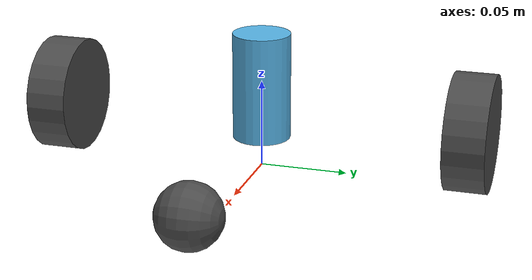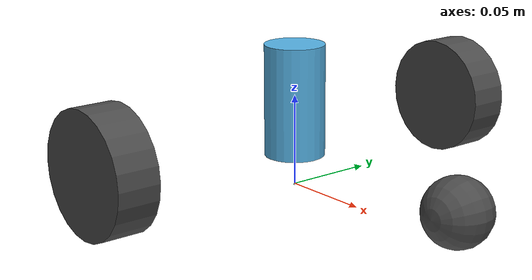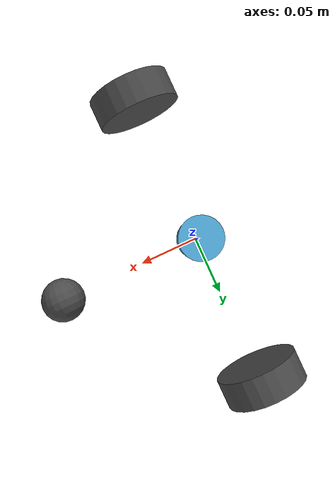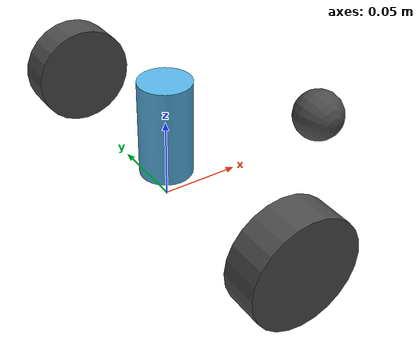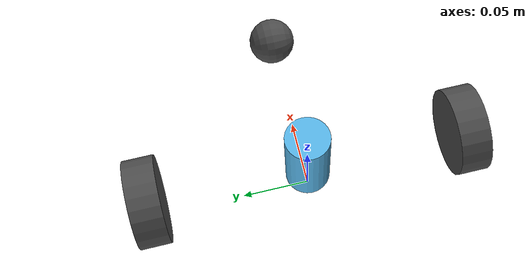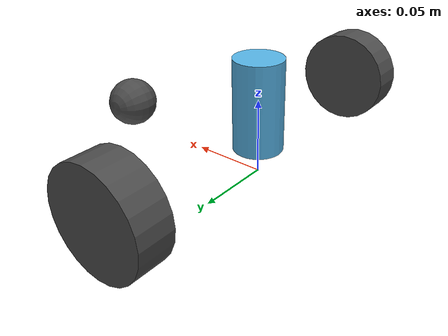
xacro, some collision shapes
<?xml version="1.0"?>
<robot name="roomba" xmlns:xacro="http://ros.org/wiki/xacro">

	<material name="Green">
		<color rgba="0.0 0.8 0.0 1.0"/>
	</material>

	<!-- base_footprint is a fictitious link(frame) that is on the ground right below base_link origin, navigation stack depends on this frame -->
	<link name="base_footprint">
		<visual>
	  		<origin xyz="0 0 0" rpy="0 0 0" />
	      		<geometry>
	        		<box size="0.001 0.001 0.001" />
	      		</geometry>
			<material name="Green" />
	 	</visual>

	 	<collision>
	      		<origin xyz="0 0 0.017" rpy="0 0 0" />
	      		<geometry>
	       			<box size="0.001 0.001 0.001" />
	      		</geometry>
	    	</collision>
	</link>

	<!-- base link, basically the body of the Roomba -->
	<link name="base_link">
		<inertial>
	     		<mass value="2" />
	      		<origin xyz="0 0 0.0" />
	      		<inertia ixx="0.01" ixy="0.0" ixz="0.0" iyy="0.01" iyz="0.0" izz="0.5" />
	 	</inertial>

	    	<visual>
	      		<origin xyz=" 0 0 0.0308" rpy="0 0 1.5708" />
	      		<geometry>
	        		<mesh filename="package://roomba_description/meshes/white_roomba.dae"/>
	      		</geometry>
	    	</visual>

	    	<collision>
	      		<origin xyz="0.0 0.0 0.0308" rpy="0 0 0" />
	      		<geometry>
	        		<cylinder length="0.0611632" radius="0.016495"/>
	     	 	</geometry>
	    	</collision>
	</link>

	<joint name="base_footprint_joint" type="fixed">
		<origin xyz="0 0 0.017" rpy="0 0 0" />
		<parent link="base_footprint"/>
	 	<child link="base_link" />
	</joint>

	<!-- cliff sensors -->
	<link name="left_cliff_sensor_link">
		<inertial>
			<mass value="0.01" />
	  		<origin xyz="0 0 0"/>
	     		<inertia ixx="0.001" ixy="0.0" ixz="0.0" iyy="0.001" iyz="0.0" izz="0.001" />
	   	</inertial>
	</link>

	<link name="right_cliff_sensor_link">
	 	<inertial>
	     		<mass value="0.01" />
	    		<origin xyz="0 0 0"/>
	    		<inertia ixx="0.001" ixy="0.0" ixz="0.0" iyy="0.001" iyz="0.0" izz="0.001" />
	    	</inertial>
	</link>

	<link name="front_left_cliff_sensor_link">
	 	<inertial>
	     		<mass value="0.01" />
	      		<origin xyz="0 0 0"/>
	      		<inertia ixx="1.0" ixy="0.0" ixz="0.0" iyy="0.01" iyz="0.0" izz="0.01" />
	    	</inertial>
	</link>

	 <link name="front_right_cliff_sensor_link">
		<inertial>
	     		<mass value="0.01" />
	      		<origin xyz="0 0 0"/>
	      		<inertia ixx="0.001" ixy="0.0" ixz="0.0" iyy="0.001" iyz="0.0" izz="0.001" />
	    	</inertial>
	</link>

	<joint name="left_sensor_joint" type="fixed">
	  	<origin xyz="0.07 0.14 0.01" rpy="0 1.57079 0" />
	    	<parent link="base_link"/>
	    	<child link="left_cliff_sensor_link" />
	</joint>

	<joint name="right_cliff_sensor_joint" type="fixed">
		<origin xyz="0.07 -0.14 0.01" rpy="0 1.57079 0" />
		<parent link="base_link"/>
	 	<child link="right_cliff_sensor_link" />
	</joint>

	<joint name="front_left_cliff_sensor_joint" type="fixed">
	    	<origin xyz="0.15 0.04 0.01" rpy="0 1.57079 0" />
	    	<parent link="base_link"/>
	    	<child link="front_left_cliff_sensor_link" />
	</joint>

	<joint name="front_right_cliff_sensor_joint" type="fixed">
	    	<origin xyz="0.15 -0.04 0.01" rpy="0 1.57079 0" />
	    	<parent link="base_link"/>
	    	<child link="front_right_cliff_sensor_link" />
	</joint>

	<!-- ir sensors -->
	<link name="left_ir_sensor_link">
		<inertial>
	   	<mass value="0.01" />
	      	<origin xyz="0 0 0"/>
	      		<inertia ixx="0.001" ixy="0.0" ixz="0.0" iyy="0.001" iyz="0.0" izz="0.001" />
	    	</inertial>
	</link>

	<link name="front_left_ir_sensor_link">
		<inertial>
	   	<mass value="0.01" />
	      	<origin xyz="0 0 0"/>
	      		<inertia ixx="0.001" ixy="0.0" ixz="0.0" iyy="0.001" iyz="0.0" izz="0.001" />
	    	</inertial>
	</link>

	<link name="center_left_ir_sensor_link">
		<inertial>
	   	<mass value="0.01" />
	      	<origin xyz="0 0 0"/>
	      		<inertia ixx="0.001" ixy="0.0" ixz="0.0" iyy="0.001" iyz="0.0" izz="0.001" />
	    	</inertial>
	</link>

	<link name="center_right_ir_sensor_link">
		<inertial>
	   	<mass value="0.01" />
	      	<origin xyz="0 0 0"/>
	      		<inertia ixx="0.001" ixy="0.0" ixz="0.0" iyy="0.001" iyz="0.0" izz="0.001" />
	    	</inertial>
	</link>

	<link name="front_right_ir_sensor_link">
		<inertial>
	   	<mass value="0.01" />
	      	<origin xyz="0 0 0"/>
	      		<inertia ixx="0.001" ixy="0.0" ixz="0.0" iyy="0.001" iyz="0.0" izz="0.001" />
	    	</inertial>
	</link>

	<link name="right_ir_sensor_link">
		<inertial>
	   	<mass value="0.01" />
	      	<origin xyz="0 0 0"/>
	      		<inertia ixx="0.001" ixy="0.0" ixz="0.0" iyy="0.001" iyz="0.0" izz="0.001" />
	    	</inertial>
	</link>

	<joint name="left_ir_sensor_joint" type="fixed">
	  	<origin xyz="0.01 0.15 0.042" rpy="0 0 1.5" />
	    	<parent link="base_link"/>
	    	<child link="left_ir_sensor_link" />
	</joint>

	<joint name="front_left_ir_sensor_joint" type="fixed">
	  	<origin xyz="0.09 0.12 0.042" rpy="0 0 1.0" />
	    	<parent link="base_link"/>
	    	<child link="front_left_ir_sensor_link" />
	</joint>

	<joint name="center_left_ir_sensor_joint" type="fixed">
	  	<origin xyz="0.15 0.04 0.042" rpy="0 0 0.4" />
	    	<parent link="base_link"/>
	    	<child link="center_left_ir_sensor_link" />
	</joint>

	<joint name="center_right_ir_sensor_joint" type="fixed">
	  	<origin xyz="0.15 -0.04 0.042" rpy="0 0 -0.4" />
	    	<parent link="base_link"/>
	    	<child link="center_right_ir_sensor_link" />
	</joint>

	<joint name="front_right_ir_sensor_joint" type="fixed">
	  	<origin xyz="0.09 -0.120 0.042" rpy="0 0 -1.0" />
	    	<parent link="base_link"/>
	    	<child link="front_right_ir_sensor_link" />
	</joint>

	<joint name="right_ir_sensor_joint" type="fixed">
	  	<origin xyz="0.01 -0.15 0.042" rpy="0 0 -1.5" />
	    	<parent link="base_link"/>
	    	<child link="right_ir_sensor_link" />
	</joint>

	<!-- bumpers -->
	<link name="left_bumper_link">
		<inertial>
	   	<mass value="0.01" />
	      	<origin xyz="0 0 0"/>
	      		<inertia ixx="0.001" ixy="0.0" ixz="0.0" iyy="0.001" iyz="0.0" izz="0.001" />
	    	</inertial>
	</link>

	<link name="right_bumper_link">
		<inertial>
	   	<mass value="0.01" />
	      	<origin xyz="0 0 0"/>
	      		<inertia ixx="0.001" ixy="0.0" ixz="0.0" iyy="0.001" iyz="0.0" izz="0.001" />
	    	</inertial>
	</link>

	<joint name="left_bumper_joint" type="fixed">
	  	<origin xyz="0.115 -0.115 0.042" rpy="0 0 -0.75" />
	    	<parent link="base_link"/>
	    	<child link="left_bumper_link" />
	</joint>

	<joint name="right_bumper_joint" type="fixed">
	  	<origin xyz="0.115 0.115 0.042" rpy="0 0 0.75" />
	    	<parent link="base_link"/>
	    	<child link="right_bumper_link" />
	</joint>

	<!-- wheels and caster wheel -->
	 <link name="left_wheel_link">
		<inertial>
	      		<origin xyz="0 0 0"/>
	      		<mass value="0.01" />
	      		<inertia ixx="0.001" ixy="0.0" ixz="0.0" iyy="0.001" iyz="0.0" izz="0.001" />
	    	</inertial>

	    	<visual>
	      		<origin xyz="0 0 0" rpy="0 1.5707 1.5707" />
	      		<geometry>
	        		<cylinder radius="0.033" length = "0.023"/>
	      		</geometry>
			<material name="DarkGray" />
	    	</visual>

	    	<collision>
	      		<origin xyz="0 0 0" rpy="0 1.5707 1.5707" />
	      		<geometry>
	        		<cylinder radius="0.033" length = "0.023"/>
	      		</geometry>
	    	</collision>
	</link>

	<joint name="left_wheel_joint" type="continuous">
	 	<origin xyz="0 0.12 0.015" rpy="0 0 0"/>
	    	<parent link="base_link"/>
	    	<child link="left_wheel_link"/>
	    	<axis xyz="0 1 0"/>
	  </joint>

	<link name="right_wheel_link">
	    	<inertial>
	      		<origin xyz="0 0 0"/>
	      		<mass value="0.01" />
	      		<inertia ixx="0.001" ixy="0.0" ixz="0.0" iyy="0.001" iyz="0.0" izz="0.001" />
	    	</inertial>

	    	<visual>
	      		<origin xyz="0 0 0" rpy="0 1.5707 1.5707" />
	      		<geometry>
	        		<cylinder radius="0.033" length = "0.023"/>
	      		</geometry>
			<material name="DarkGray" />
	    	</visual>

	  	<collision>
	      		<origin xyz="0 0 0" rpy="0 1.5707 1.5707" />
	      		<geometry>
	        		<cylinder radius="0.033" length = "0.023"/>
	      		</geometry>
	    	</collision>
	</link>

	<joint name="right_wheel_joint" type="continuous">
	  	<origin xyz="0 -0.12 0.015" rpy="0 0 0"/>
	    	<parent link="base_link"/>
	    	<child link="right_wheel_link"/>
	    	<axis xyz="0 1 0"/>
	</joint>

	<link name="caster_wheel_link">
		<inertial>
	      		<origin xyz="0 0 0" />
	      		<mass value="0.01" />
	      		<inertia ixx="0.001" ixy="0.0" ixz="0.0" iyy="0.001" iyz="0.0" izz="0.001" />
	    	</inertial>

	    	<visual>
	      		<origin xyz="0 0 0" rpy="0 1.5707 1.5707"/>
	      		<geometry>
				<sphere radius="0.018" />
	      		</geometry>
			<material name="DarkGray" />
	    	</visual>

	    	<collision>
	      		<origin xyz="0 0 0" rpy="0 1.5707 1.5707" />
	      		<geometry>
	        		<sphere radius="0.018" />
	      		</geometry>
	    	</collision>
	</link>

	<joint name="caster_wheel_joint" type="fixed">
	 	<origin xyz="0.12 0 0.0" rpy="0 0 0"/>
	    	<parent link="base_link"/>
	    	<child link="caster_wheel_link"/>
	    	<axis xyz="0 1 0"/>
	</joint>

</robot>
